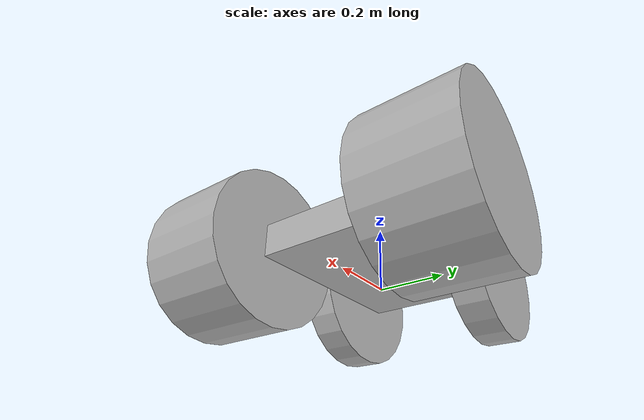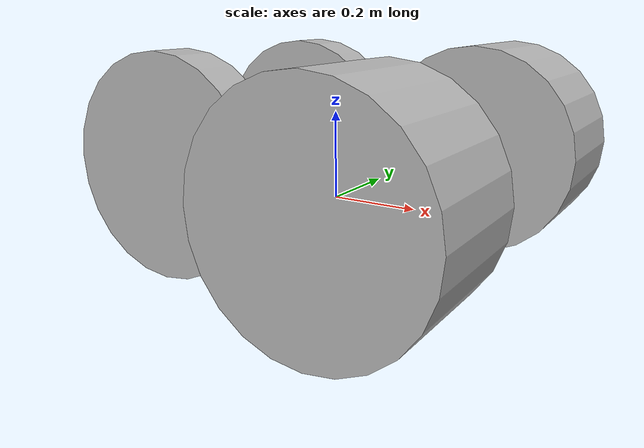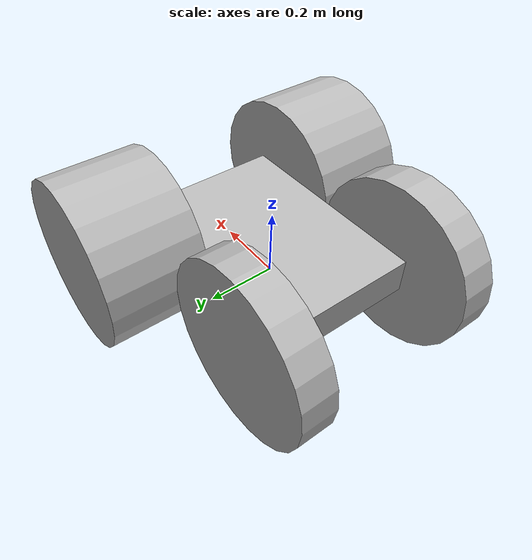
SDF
<sdf version="1.7">
    <model name='fourWheeledRobot'>
    <link name='chassis'>
        <pose>0 0 0.1 0 0 0</pose>
        <static>true</static>
        <inertial>
		<mass>10</mass>
	</inertial>
        <collision name='collision'>
            <geometry>
                <box>
                    <size> 0.6 0.4 0.1 </size>
                </box>
            </geometry>
        </collision>
        <visual name='visual'>
            <geometry>
                <box>
                    <size> 0.6 0.4 0.1 </size>
                </box>
            </geometry>
        </visual>
    </link>

    <!-- Left Back Wheel -->
    <link name='left_back_wheel'>
        <pose>-0.245 0.253 0.1 0 1.5707 1.5707</pose>
        <collision name='lw_collision'>
            <geometry>
                <cylinder>
                    <radius>0.244</radius>
                    <length>0.1</length>
                </cylinder>
            </geometry>
            <friction>
                <ode>
                    <mu>1000.0</mu>
                    <mu2>1000.0</mu2>
                    <fdir1>0 1 0</fdir1>
                    <slip1>0.0</slip1>
                    <slip2>0.0</slip2>
                </ode>
            </friction>
        </collision>
        <visual name='lw_visual'>
            <geometry>
                <cylinder>
                    <radius>0.244</radius>
                    <length>0.1</length>
                </cylinder>
            </geometry>
        </visual>
    </link>

    <!-- Left Front Wheel -->
    <link name='left_front_wheel'>
        <pose>0.245 0.343 0.1 0 1.5707 1.5707</pose>
        <collision name='lw_collision'>
            <geometry>
                <cylinder>
                    <radius>0.244</radius>
                    <length>0.28</length>
                </cylinder>
            </geometry>
            <friction>
                <ode>
                    <mu>1000.0</mu>
                    <mu2>1000.0</mu2>
                    <fdir1>0 1 0</fdir1>
                    <slip1>0.0</slip1>
                    <slip2>0.0</slip2>
                </ode>
            </friction>
        </collision>
        <visual name='lw_visual'>
            <geometry>
                <cylinder>
                    <radius>0.244</radius>
                    <length>0.28</length>
                </cylinder>
            </geometry>
        </visual>
    </link>

    <!-- Right Back Wheel -->
    <link name='right_back_wheel'>
        <pose>-0.245 -0.253 0.1 0 1.5707 1.5707</pose>
        <collision name='lw_collision'>
            <geometry>
                <cylinder>
                    <radius>0.244</radius>
                    <length>0.1</length>
                </cylinder>
            </geometry>
            <surface>
            <friction>
                <ode>
                    <mu>1000.0</mu>
                    <mu2>1000.0</mu2>
                    <fdir1>0 1 0</fdir1>
                    <slip1>0.0</slip1>
                    <slip2>0.0</slip2>
                </ode>
            </friction>
            </surface>
        </collision>
        <visual name='lw_visual'>
            <geometry>
                <cylinder>
                    <radius>0.244</radius>
                    <length>0.1</length>
                </cylinder>
            </geometry>
        </visual>
    </link>

    <!-- Right Front Wheel -->
    <link name='right_front_wheel'>
        <pose>0.245 -0.343 0.1 0 1.5707 1.5707</pose>
        <collision name='lw_collision'>
            <geometry>
                <cylinder>
                    <radius>0.244</radius>
                    <length>0.28</length>
                </cylinder>
            </geometry>
            <surface>
            <friction>
                <ode>
                    <mu>1000.0</mu>
                    <mu2>1000.0</mu2>
                    <fdir1>0 1 0</fdir1>
                    <slip1>0.0</slip1>
                    <slip2>0.0</slip2>
                </ode>
            </friction>
            </surface>
        </collision>
        <visual name='lw_visual'>
            <geometry>
                <cylinder>
                    <radius>0.244</radius>
                    <length>0.28</length>
                </cylinder>
            </geometry>
        </visual>
    </link>

    <joint type='revolute' name='left_back_wheel_hinge'>
        <pose> 0 0 -0.03 0 0 0 </pose>
        <child>left_back_wheel</child>
        <parent>chassis</parent>
        <axis>
            <xyz>0 0 1</xyz>
        </axis>
        <dynamics>
            <friction>100.0</friction>
            <spring_stiffness>0.1</spring_stiffness>
        </dynamics>
        <limit>
            <effort>200.0</effort>
            <velocity>0.05</velocity>
        </limit>
    </joint>

    <joint type='revolute' name='left_front_wheel_hinge'>
        <pose> 0 0 -0.03 0 0 0 </pose>
        <child>left_front_wheel</child>
        <parent>chassis</parent>
        <axis>
            <xyz>0 0 1</xyz>
        </axis>
        <dynamics>
            <friction>100.0</friction>
            <spring_stiffness>0.1</spring_stiffness>
        </dynamics>
        <limit>
            <effort>2.0</effort>
            <velocity>0.05</velocity>
        </limit>
    </joint>

    <joint type='revolute' name='right_back_wheel_hinge'>
        <pose> 0 0 0.03 0 0 0 </pose>
        <child>right_back_wheel</child>
        <parent>chassis</parent>
        <axis>
            <xyz>0 0 1</xyz>
        </axis>
        <dynamics>
            <friction>100.0</friction>
            <spring_stiffness>0.1</spring_stiffness>
        </dynamics>
        <limit>
            <effort>200.0</effort>
            <velocity>0.05</velocity>
        </limit>
    </joint>

    <joint type='revolute' name='right_front_wheel_hinge'>
        <pose> 0 0 0.03 0 0 0 </pose>
        <child>right_front_wheel</child>
        <parent>chassis</parent>
        <axis>
            <xyz>0 0 1</xyz>
        </axis>
        <dynamics>
            <friction>100.0</friction>
            <spring_stiffness>0.1</spring_stiffness>
        </dynamics>
        <limit>
            <effort>200.0</effort>
            <velocity>0.05</velocity>
        </limit>
    </joint>

    </model>
</sdf>
